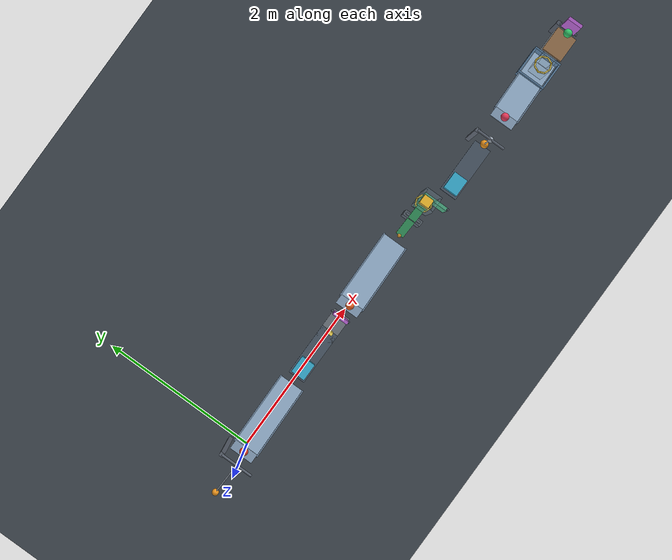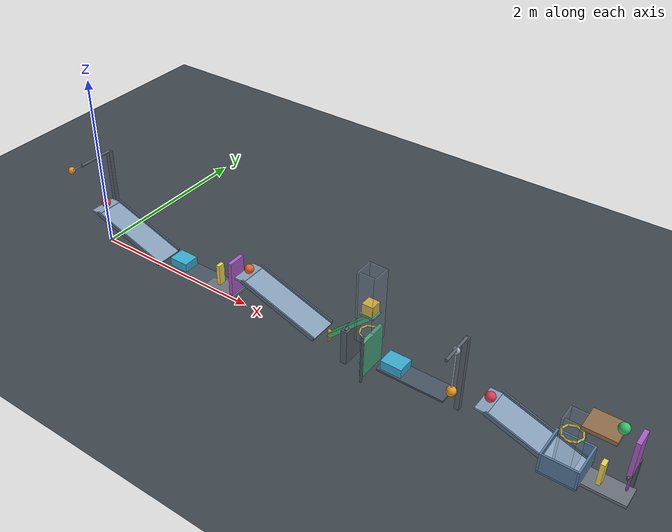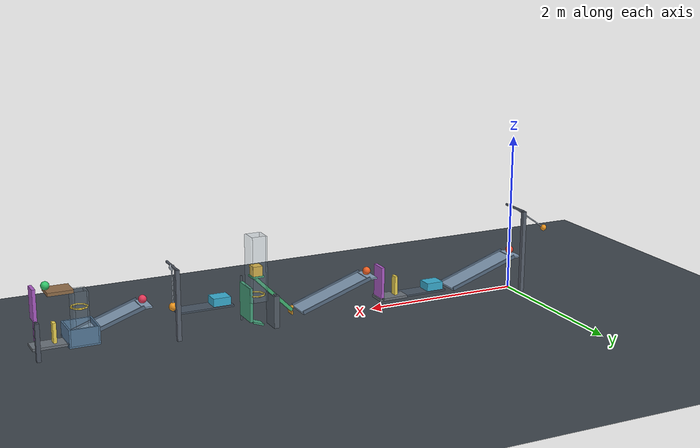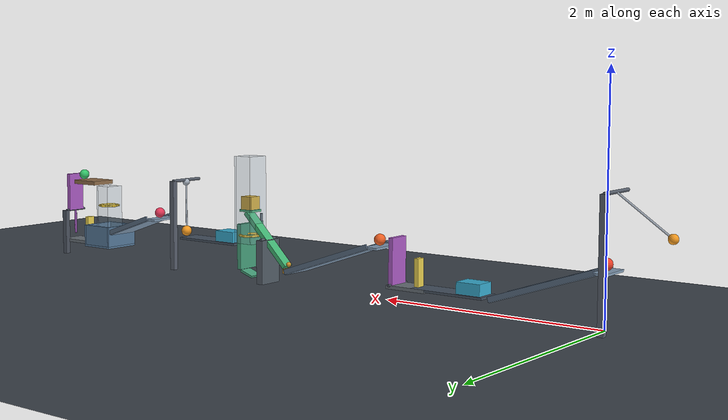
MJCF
<mujoco model="passive_cascade">
  <compiler angle="degree" autolimits="true" inertiafromgeom="true"/>
  <option timestep="0.002" gravity="0 0 -9.81" integrator="implicitfast" solver="Newton" iterations="100" tolerance="1e-9"/>
  <size njmax="3000" nconmax="1000"/>
  <visual>
    <global azimuth="115" elevation="-18"/>
    <map znear="0.01" zfar="30"/>
  </visual>

  <worldbody>
    <light name="overhead_light" pos="3 -3 7" dir="0 0 -1" diffuse="0.9 0.9 0.9"/>
    <camera name="overview" pos="3.2 -8 4.2" xyaxes="1 0 0 0 0.38 0.925"/>
    <geom name="floor" type="plane" size="12 6 0.1" pos="0 0 0" friction="0.68 0.001 0.0001" solref="0.015 0.69" solimp="0.95 0.99 0.001" contype="1" conaffinity="63" rgba="0.24 0.27 0.30 1"/>

    <!-- Unvalidated candidate layout; cascade completion has not been verified. -->
    <!-- Initial transforms are the release configuration; all velocities are zero. -->
    <!-- Hinge damping is 0.04; slide damping is 0.20. -->
    <!-- Contact damping ratio 0.69 approximates restitution 0.05. -->

    <body name="pendulum1" pos="-0.065 0 1.059311" euler="0 55 0">
      <joint name="pendulum1_hinge" type="hinge" axis="0 -1 0" range="0 125" damping="0.04"/>
      <geom name="pendulum1_rod" type="capsule" fromto="0 0 0 0 0 -0.51" size="0.008" mass="0.04" friction="0.68 0.001 0.0001" solref="0.015 0.69" contype="1" conaffinity="3" rgba="0.65 0.69 0.74 1"/>
      <geom name="pendulum1_bob" type="sphere" pos="0 0 -0.55" size="0.04" mass="0.36" friction="0.68 0.001 0.0001" solref="0.015 0.69" contype="1" conaffinity="3" rgba="0.95 0.60 0.12 1"/>
    </body>

    <body name="pendulum1_support" pos="-0.065 0 1.059311">
      <geom name="pendulum1_support_axle" type="cylinder" size="0.015 0.20" euler="90 0 0" contype="0" conaffinity="0" rgba="0.35 0.38 0.43 1"/>
      <geom name="pendulum1_support_post" type="box" pos="0 0.20 -0.5296555" size="0.025 0.025 0.5296555" contype="0" conaffinity="0" rgba="0.35 0.38 0.43 1"/>
    </body>

    <body name="ball1" pos="0 0 0.509311">
      <freejoint name="ball1_free"/>
      <geom name="ball1_geom" type="sphere" size="0.05" mass="0.20" friction="0.68 0.001 0.0001" solref="0.015 0.69" solimp="0.95 0.99 0.001" contype="2" conaffinity="3" rgba="0.93 0.25 0.16 1"/>
    </body>

    <body name="ramp1" pos="0.025 0 0">
      <geom name="ramp1_surface" type="box" pos="0.445339 0 0.293310" euler="0 19 0" size="0.475 0.15 0.012" friction="0.68 0.001 0.0001" solref="0.015 0.69" contype="2" conaffinity="2" rgba="0.52 0.62 0.72 1"/>
      <geom name="ramp1_start_landing" type="box" pos="-0.035 0 0.449311" size="0.06 0.15 0.01" friction="0.68 0.001 0.0001" solref="0.015 0.69" contype="2" conaffinity="2" rgba="0.52 0.62 0.72 1"/>
      <geom name="ramp1_left_rail" type="box" pos="0.450548 -0.158 0.308439" euler="0 19 0" size="0.475 0.008 0.022" friction="0.68 0.001 0.0001" solref="0.015 0.69" contype="2" conaffinity="2" rgba="0.35 0.43 0.52 1"/>
      <geom name="ramp1_right_rail" type="box" pos="0.450548 0.158 0.308439" euler="0 19 0" size="0.475 0.008 0.022" friction="0.68 0.001 0.0001" solref="0.015 0.69" contype="2" conaffinity="2" rgba="0.35 0.43 0.52 1"/>
    </body>

    <body name="cart1" pos="1.153242 0 0.20">
      <joint name="cart1_slide" type="slide" axis="1 0 0" range="0 0.40" damping="0.20" solreflimit="0.006 1"/>
      <geom name="cart1_geom" type="box" size="0.11 0.09 0.05" mass="0.50" friction="0.68 0.001 0.0001" solref="0.015 0.69" contype="1" conaffinity="3" rgba="0.22 0.68 0.82 1"/>
    </body>

    <body name="cart1_track" pos="1.353242 0 0.14">
      <geom name="cart1_track_geom" type="box" size="0.34 0.11 0.01" contype="0" conaffinity="0" rgba="0.28 0.33 0.39 1"/>
    </body>

    <body name="domino1" pos="1.681242 0 0.2701">
      <freejoint name="domino1_free"/>
      <geom name="domino1_geom" type="box" size="0.02 0.04 0.12" mass="0.25" friction="0.68 0.001 0.0001" solref="0.015 0.69" solimp="0.95 0.99 0.001" contype="1" conaffinity="3" rgba="0.93 0.83 0.32 1"/>
    </body>

    <body name="domino1_support" pos="1.75 0 0.135">
      <geom name="domino1_support_geom" type="box" size="0.19 0.11 0.015" friction="0.68 0.001 0.0001" solref="0.015 0.69" contype="1" conaffinity="1" rgba="0.42 0.45 0.48 1"/>
    </body>

    <body name="flap1" pos="1.901242 0 0.15">
      <joint name="flap1_hinge" type="hinge" axis="0 1 0" range="0 65" damping="0.04" solreflimit="0.004 1"/>
      <geom name="flap1_panel" type="box" pos="0 0 0.20" size="0.02 0.10 0.20" mass="0.30" friction="0.68 0.001 0.0001" solref="0.015 0.69" contype="1" conaffinity="3" rgba="0.68 0.36 0.78 1"/>
    </body>

    <body name="flap1_support" pos="1.901242 0 0.15">
      <geom name="flap1_support_axle" type="cylinder" size="0.012 0.13" euler="90 0 0" contype="0" conaffinity="0" rgba="0.30 0.33 0.38 1"/>
    </body>

    <body name="ball2" pos="2.08 0 0.509311">
      <freejoint name="ball2_free"/>
      <geom name="ball2_geom" type="sphere" size="0.05" mass="0.20" friction="0.68 0.001 0.0001" solref="0.015 0.69" solimp="0.95 0.99 0.001" contype="2" conaffinity="3" rgba="0.94 0.38 0.14 1"/>
    </body>

    <body name="ramp2" pos="2.105 0 0">
      <geom name="ramp2_surface" type="box" pos="0.445339 0 0.293310" euler="0 19 0" size="0.475 0.15 0.012" friction="0.68 0.001 0.0001" solref="0.015 0.69" contype="2" conaffinity="2" rgba="0.52 0.62 0.72 1"/>
      <geom name="ramp2_start_landing" type="box" pos="-0.035 0 0.449311" size="0.06 0.15 0.01" friction="0.68 0.001 0.0001" solref="0.015 0.69" contype="2" conaffinity="2" rgba="0.52 0.62 0.72 1"/>
      <geom name="ramp2_left_rail" type="box" pos="0.450548 -0.158 0.308439" euler="0 19 0" size="0.475 0.008 0.022" friction="0.68 0.001 0.0001" solref="0.015 0.69" contype="2" conaffinity="2" rgba="0.35 0.43 0.52 1"/>
      <geom name="ramp2_right_rail" type="box" pos="0.450548 0.158 0.308439" euler="0 19 0" size="0.475 0.008 0.022" friction="0.68 0.001 0.0001" solref="0.015 0.69" contype="2" conaffinity="2" rgba="0.35 0.43 0.52 1"/>
    </body>

    <!-- The beam starts inclined so its left end meets the low ramp exit. -->
    <!-- A lightweight sliding contact latch holds the preloaded spring. -->
    <body name="seesaw1" pos="3.333051 0 0.40" euler="0 -45 0">
      <joint name="seesaw1_hinge" type="hinge" axis="0 -1 0" range="0 40" damping="0.04" stiffness="2" springref="90" solreflimit="0.003 1"/>
      <geom name="seesaw1_beam" type="box" size="0.325 0.05 0.02" mass="0.53" friction="0.68 0.001 0.0001" solref="0.015 0.69" contype="1" conaffinity="3" rgba="0.26 0.72 0.46 1"/>
      <geom name="seesaw1_block_seat" type="box" pos="0.325 0 0.028284" euler="0 45 0" size="0.075 0.065 0.01" mass="0.02" friction="0.68 0.001 0.0001" solref="0.015 0.69" contype="1" conaffinity="5" rgba="0.26 0.72 0.46 1"/>
    </body>

    <body name="seesaw1_support" pos="3.333051 0 0.20">
      <geom name="seesaw1_support_post" type="box" size="0.035 0.12 0.20" contype="0" conaffinity="0" rgba="0.33 0.37 0.41 1"/>
      <geom name="seesaw1_support_axle" type="cylinder" pos="0 0 0.20" euler="90 0 0" size="0.015 0.10" contype="0" conaffinity="0" rgba="0.33 0.37 0.41 1"/>
    </body>

    <body name="seesaw1_release_latch" pos="3.103242 0 0.136">
      <joint name="seesaw1_release_slide" type="slide" axis="1 0 0" range="0 0.16" damping="0.20"/>
      <geom name="seesaw1_release_support" type="box" size="0.008 0.055 0.020" mass="0.012" friction="0.68 0.001 0.0001" solref="0.008 0.69" contype="1" conaffinity="3" rgba="0.80 0.57 0.18 1"/>
      <geom name="seesaw1_release_striker" type="sphere" pos="-0.018 0 0.057" size="0.023" mass="0.018" friction="0.68 0.001 0.0001" solref="0.008 0.69" contype="1" conaffinity="3" rgba="0.80 0.57 0.18 1"/>
    </body>

    <body name="block1" pos="3.542860 0 0.719810">
      <freejoint name="block1_free"/>
      <geom name="block1_geom" type="box" size="0.06 0.06 0.06" mass="0.35" friction="0.68 0.001 0.0001" solref="0.015 0.69" solimp="0.95 0.99 0.001" contype="4" conaffinity="13" rgba="0.95 0.74 0.18 1"/>
    </body>

    <!-- A square vertical guide suppresses lateral escape during launch. -->
    <body name="block1_guide" pos="3.542860 0 0.75">
      <geom name="block1_guide_xminus" type="box" pos="-0.092 0 0" size="0.01 0.102 0.40" friction="0.68 0.001 0.0001" solref="0.015 0.69" contype="8" conaffinity="4" rgba="0.56 0.67 0.75 0.25"/>
      <geom name="block1_guide_xplus" type="box" pos="0.092 0 0" size="0.01 0.102 0.40" friction="0.68 0.001 0.0001" solref="0.015 0.69" contype="8" conaffinity="4" rgba="0.56 0.67 0.75 0.25"/>
      <geom name="block1_guide_yminus" type="box" pos="0 -0.092 0" size="0.082 0.01 0.40" friction="0.68 0.001 0.0001" solref="0.015 0.69" contype="8" conaffinity="4" rgba="0.56 0.67 0.75 0.25"/>
      <geom name="block1_guide_yplus" type="box" pos="0 0.092 0" size="0.082 0.01 0.40" friction="0.68 0.001 0.0001" solref="0.015 0.69" contype="8" conaffinity="4" rgba="0.56 0.67 0.75 0.25"/>
    </body>

    <!-- Octagonal horizontal ring: minimum clear diameter is 0.16 m. -->
    <!-- Its corners accommodate the corners of the 0.12 m cube. -->
    <body name="ring1" pos="3.542860 0 0.419810">
      <geom name="ring1_segment1" type="capsule" fromto="0.097415 0 0 0.068883 0.068883 0" size="0.01" friction="0.68 0.001 0.0001" solref="0.015 0.69" contype="4" conaffinity="4" rgba="0.90 0.76 0.20 1"/>
      <geom name="ring1_segment2" type="capsule" fromto="0.068883 0.068883 0 0 0.097415 0" size="0.01" friction="0.68 0.001 0.0001" solref="0.015 0.69" contype="4" conaffinity="4" rgba="0.90 0.76 0.20 1"/>
      <geom name="ring1_segment3" type="capsule" fromto="0 0.097415 0 -0.068883 0.068883 0" size="0.01" friction="0.68 0.001 0.0001" solref="0.015 0.69" contype="4" conaffinity="4" rgba="0.90 0.76 0.20 1"/>
      <geom name="ring1_segment4" type="capsule" fromto="-0.068883 0.068883 0 -0.097415 0 0" size="0.01" friction="0.68 0.001 0.0001" solref="0.015 0.69" contype="4" conaffinity="4" rgba="0.90 0.76 0.20 1"/>
      <geom name="ring1_segment5" type="capsule" fromto="-0.097415 0 0 -0.068883 -0.068883 0" size="0.01" friction="0.68 0.001 0.0001" solref="0.015 0.69" contype="4" conaffinity="4" rgba="0.90 0.76 0.20 1"/>
      <geom name="ring1_segment6" type="capsule" fromto="-0.068883 -0.068883 0 0 -0.097415 0" size="0.01" friction="0.68 0.001 0.0001" solref="0.015 0.69" contype="4" conaffinity="4" rgba="0.90 0.76 0.20 1"/>
      <geom name="ring1_segment7" type="capsule" fromto="0 -0.097415 0 0.068883 -0.068883 0" size="0.01" friction="0.68 0.001 0.0001" solref="0.015 0.69" contype="4" conaffinity="4" rgba="0.90 0.76 0.20 1"/>
      <geom name="ring1_segment8" type="capsule" fromto="0.068883 -0.068883 0 0.097415 0 0" size="0.01" friction="0.68 0.001 0.0001" solref="0.015 0.69" contype="4" conaffinity="4" rgba="0.90 0.76 0.20 1"/>
    </body>

    <!-- Door is vertically hinged, clockwise as viewed from above. -->
    <!-- Its inclined toe converts the falling block's impulse into rotation. -->
    <body name="door1" pos="3.632860 -0.26 0.31">
      <joint name="door1_hinge" type="hinge" axis="0 0 -1" range="0 70" damping="0.04" solreflimit="0.004 1"/>
      <geom name="door1_panel" type="box" pos="0 0.16 0" size="0.02 0.16 0.21" mass="0.42" friction="0.68 0.001 0.0001" solref="0.015 0.69" contype="1" conaffinity="7" rgba="0.28 0.64 0.49 1"/>
      <geom name="door1_impact_toe" type="box" pos="-0.09 0.26 -0.242258" euler="0 -19 0" size="0.07 0.065 0.01" mass="0.03" friction="0.68 0.001 0.0001" solref="0.015 0.69" contype="1" conaffinity="7" rgba="0.28 0.64 0.49 1"/>
    </body>

    <body name="door1_support" pos="3.632860 -0.26 0.31">
      <geom name="door1_support_axle" type="cylinder" size="0.012 0.28" contype="0" conaffinity="0" rgba="0.32 0.36 0.40 1"/>
    </body>

    <body name="cart2" pos="3.945 -0.17 0.36">
      <joint name="cart2_slide" type="slide" axis="1 0 0" range="0 0.42" damping="0.20" solreflimit="0.006 1"/>
      <geom name="cart2_geom" type="box" size="0.11 0.09 0.05" mass="0.50" friction="0.68 0.001 0.0001" solref="0.015 0.69" contype="1" conaffinity="3" rgba="0.22 0.68 0.82 1"/>
    </body>

    <body name="cart2_track" pos="4.155 -0.17 0.30">
      <geom name="cart2_track_geom" type="box" size="0.35 0.11 0.01" contype="0" conaffinity="0" rgba="0.28 0.33 0.39 1"/>
    </body>

    <body name="pendulum2" pos="4.523 -0.17 0.86">
      <joint name="pendulum2_hinge" type="hinge" axis="0 -1 0" range="0 38" damping="0.04" solreflimit="0.004 1"/>
      <geom name="pendulum2_rod" type="capsule" fromto="0 0 0 0 0 -0.49" size="0.008" mass="0.03" friction="0.68 0.001 0.0001" solref="0.015 0.69" contype="1" conaffinity="3" rgba="0.65 0.69 0.74 1"/>
      <geom name="pendulum2_hub_mass" type="sphere" pos="0 0 -0.02" size="0.035" mass="0.27" friction="0.68 0.001 0.0001" solref="0.015 0.69" contype="1" conaffinity="3" rgba="0.65 0.69 0.74 1"/>
      <geom name="pendulum2_bob" type="sphere" pos="0 0 -0.50" size="0.05" mass="0.05" friction="0.68 0.001 0.0001" solref="0.015 0.69" contype="1" conaffinity="3" rgba="0.95 0.60 0.12 1"/>
    </body>

    <body name="pendulum2_support" pos="4.523 -0.17 0.86">
      <geom name="pendulum2_support_axle" type="cylinder" size="0.015 0.18" euler="90 0 0" contype="0" conaffinity="0" rgba="0.35 0.38 0.43 1"/>
      <geom name="pendulum2_support_post" type="box" pos="0 0.18 -0.43" size="0.025 0.025 0.43" contype="0" conaffinity="0" rgba="0.35 0.38 0.43 1"/>
    </body>

    <body name="ball3" pos="4.89 -0.17 0.509311">
      <freejoint name="ball3_free"/>
      <geom name="ball3_geom" type="sphere" size="0.05" mass="0.20" friction="0.68 0.001 0.0001" solref="0.015 0.69" solimp="0.95 0.99 0.001" contype="2" conaffinity="3" rgba="0.90 0.22 0.35 1"/>
    </body>

    <body name="ramp3" pos="4.915 -0.17 0">
      <geom name="ramp3_surface" type="box" pos="0.445339 0 0.293310" euler="0 19 0" size="0.475 0.15 0.012" friction="0.68 0.001 0.0001" solref="0.015 0.69" contype="2" conaffinity="2" rgba="0.52 0.62 0.72 1"/>
      <geom name="ramp3_start_landing" type="box" pos="-0.035 0 0.449311" size="0.06 0.15 0.01" friction="0.68 0.001 0.0001" solref="0.015 0.69" contype="2" conaffinity="2" rgba="0.52 0.62 0.72 1"/>
      <geom name="ramp3_left_rail" type="box" pos="0.450548 -0.158 0.308439" euler="0 19 0" size="0.475 0.008 0.022" friction="0.68 0.001 0.0001" solref="0.015 0.69" contype="2" conaffinity="2" rgba="0.35 0.43 0.52 1"/>
      <geom name="ramp3_right_rail" type="box" pos="0.450548 0.158 0.308439" euler="0 19 0" size="0.475 0.008 0.022" friction="0.68 0.001 0.0001" solref="0.015 0.69" contype="2" conaffinity="2" rgba="0.35 0.43 0.52 1"/>
    </body>

    <body name="domino2" pos="5.933242 -0.17 0.2701">
      <freejoint name="domino2_free"/>
      <geom name="domino2_geom" type="box" size="0.02 0.04 0.12" mass="0.25" friction="0.68 0.001 0.0001" solref="0.015 0.69" solimp="0.95 0.99 0.001" contype="1" conaffinity="3" rgba="0.93 0.83 0.32 1"/>
    </body>

    <body name="domino2_support" pos="6.01 -0.17 0.135">
      <geom name="domino2_support_geom" type="box" size="0.20 0.11 0.015" friction="0.68 0.001 0.0001" solref="0.015 0.69" contype="1" conaffinity="1" rgba="0.42 0.45 0.48 1"/>
    </body>

    <!-- The lower trigger arm reaches the toppling domino. -->
    <!-- The upper panel strikes leftward toward the final shelf. -->
    <body name="flap2" pos="6.153242 -0.17 0.45">
      <joint name="flap2_hinge" type="hinge" axis="0 -1 0" range="0 60" damping="0.04" solreflimit="0.004 1"/>
      <geom name="flap2_panel" type="box" pos="0 0 0.19" size="0.02 0.09 0.19" mass="0.26" friction="0.68 0.001 0.0001" solref="0.015 0.69" contype="1" conaffinity="19" rgba="0.68 0.36 0.78 1"/>
      <geom name="flap2_trigger_arm" type="capsule" fromto="0 0 -0.24 0 0 0" size="0.012" mass="0.02" friction="0.68 0.001 0.0001" solref="0.015 0.69" contype="1" conaffinity="3" rgba="0.54 0.29 0.63 1"/>
    </body>

    <body name="flap2_support" pos="6.153242 -0.17 0.45">
      <geom name="flap2_support_axle" type="cylinder" size="0.012 0.12" euler="90 0 0" contype="0" conaffinity="0" rgba="0.30 0.33 0.38 1"/>
      <geom name="flap2_support_post" type="box" pos="0 0.13 -0.225" size="0.025 0.025 0.225" contype="0" conaffinity="0" rgba="0.30 0.33 0.38 1"/>
    </body>

    <body name="ball4" pos="6.003242 -0.17 0.8301">
      <freejoint name="ball4_free"/>
      <geom name="ball4_geom" type="sphere" size="0.05" mass="0.20" friction="0.68 0.001 0.0001" solref="0.015 0.69" solimp="0.95 0.99 0.001" contype="16" conaffinity="49" rgba="0.20 0.78 0.42 1"/>
    </body>

    <body name="shelf1" pos="5.863242 -0.17 0.76">
      <geom name="shelf1_surface" type="box" size="0.15 0.125 0.02" friction="0.68 0.001 0.0001" solref="0.015 0.69" contype="16" conaffinity="16" rgba="0.57 0.43 0.29 1"/>
    </body>

    <!-- Final guide is open at its top and bottom. -->
    <body name="ball4_drop_guide" pos="5.63 -0.17 0.465">
      <geom name="ball4_drop_guide_xminus" type="box" pos="-0.080 0 0" size="0.01 0.09 0.265" friction="0.68 0.001 0.0001" solref="0.015 0.69" contype="32" conaffinity="16" rgba="0.56 0.67 0.75 0.25"/>
      <geom name="ball4_drop_guide_xplus" type="box" pos="0.080 0 0" size="0.01 0.09 0.265" friction="0.68 0.001 0.0001" solref="0.015 0.69" contype="32" conaffinity="16" rgba="0.56 0.67 0.75 0.25"/>
      <geom name="ball4_drop_guide_yminus" type="box" pos="0 -0.080 0" size="0.07 0.01 0.265" friction="0.68 0.001 0.0001" solref="0.015 0.69" contype="32" conaffinity="16" rgba="0.56 0.67 0.75 0.25"/>
      <geom name="ball4_drop_guide_yplus" type="box" pos="0 0.080 0" size="0.07 0.01 0.265" friction="0.68 0.001 0.0001" solref="0.015 0.69" contype="32" conaffinity="16" rgba="0.56 0.67 0.75 0.25"/>
    </body>

    <body name="ring2" pos="5.63 -0.17 0.53">
      <geom name="ring2_segment1" type="capsule" fromto="0.097415 0 0 0.068883 0.068883 0" size="0.01" friction="0.68 0.001 0.0001" solref="0.015 0.69" contype="16" conaffinity="16" rgba="0.90 0.76 0.20 1"/>
      <geom name="ring2_segment2" type="capsule" fromto="0.068883 0.068883 0 0 0.097415 0" size="0.01" friction="0.68 0.001 0.0001" solref="0.015 0.69" contype="16" conaffinity="16" rgba="0.90 0.76 0.20 1"/>
      <geom name="ring2_segment3" type="capsule" fromto="0 0.097415 0 -0.068883 0.068883 0" size="0.01" friction="0.68 0.001 0.0001" solref="0.015 0.69" contype="16" conaffinity="16" rgba="0.90 0.76 0.20 1"/>
      <geom name="ring2_segment4" type="capsule" fromto="-0.068883 0.068883 0 -0.097415 0 0" size="0.01" friction="0.68 0.001 0.0001" solref="0.015 0.69" contype="16" conaffinity="16" rgba="0.90 0.76 0.20 1"/>
      <geom name="ring2_segment5" type="capsule" fromto="-0.097415 0 0 -0.068883 -0.068883 0" size="0.01" friction="0.68 0.001 0.0001" solref="0.015 0.69" contype="16" conaffinity="16" rgba="0.90 0.76 0.20 1"/>
      <geom name="ring2_segment6" type="capsule" fromto="-0.068883 -0.068883 0 0 -0.097415 0" size="0.01" friction="0.68 0.001 0.0001" solref="0.015 0.69" contype="16" conaffinity="16" rgba="0.90 0.76 0.20 1"/>
      <geom name="ring2_segment7" type="capsule" fromto="0 -0.097415 0 0.068883 -0.068883 0" size="0.01" friction="0.68 0.001 0.0001" solref="0.015 0.69" contype="16" conaffinity="16" rgba="0.90 0.76 0.20 1"/>
      <geom name="ring2_segment8" type="capsule" fromto="0.068883 -0.068883 0 0.097415 0 0" size="0.01" friction="0.68 0.001 0.0001" solref="0.015 0.69" contype="16" conaffinity="16" rgba="0.90 0.76 0.20 1"/>
    </body>

    <!-- Inner footprint 0.32 x 0.32; walls 0.20 high and 0.02 thick. -->
    <!-- Bottom top is z=0.13, giving a resting ball-center height of 0.18. -->
    <body name="box1" pos="5.63 -0.17 0.13">
      <geom name="box1_bottom" type="box" pos="0 0 -0.01" size="0.18 0.18 0.01" friction="0.68 0.001 0.0001" solref="0.015 0.69" solimp="0.95 0.99 0.001" contype="16" conaffinity="16" rgba="0.34 0.48 0.61 1"/>
      <geom name="box1_wall_xminus" type="box" pos="-0.17 0 0.10" size="0.01 0.18 0.10" friction="0.68 0.001 0.0001" solref="0.015 0.69" contype="16" conaffinity="16" rgba="0.34 0.48 0.61 1"/>
      <geom name="box1_wall_xplus" type="box" pos="0.17 0 0.10" size="0.01 0.18 0.10" friction="0.68 0.001 0.0001" solref="0.015 0.69" contype="16" conaffinity="16" rgba="0.34 0.48 0.61 1"/>
      <geom name="box1_wall_yminus" type="box" pos="0 -0.17 0.10" size="0.16 0.01 0.10" friction="0.68 0.001 0.0001" solref="0.015 0.69" contype="16" conaffinity="16" rgba="0.34 0.48 0.61 1"/>
      <geom name="box1_wall_yplus" type="box" pos="0 0.17 0.10" size="0.16 0.01 0.10" friction="0.68 0.001 0.0001" solref="0.015 0.69" contype="16" conaffinity="16" rgba="0.34 0.48 0.61 1"/>
    </body>
  </worldbody>

  <keyframe>
    <key name="start" time="0"/>
  </keyframe>
</mujoco>
